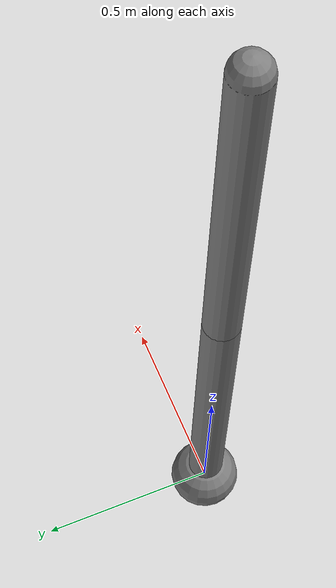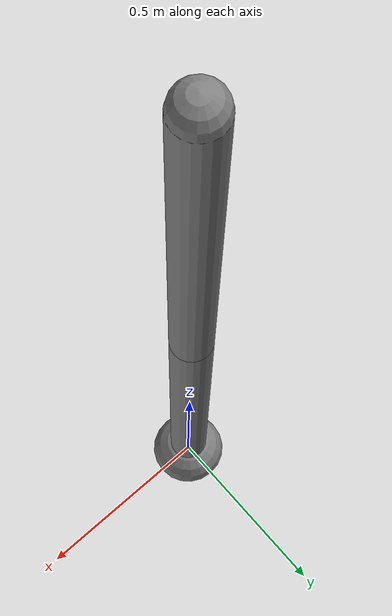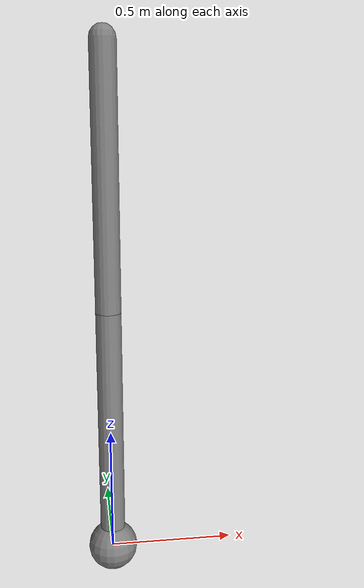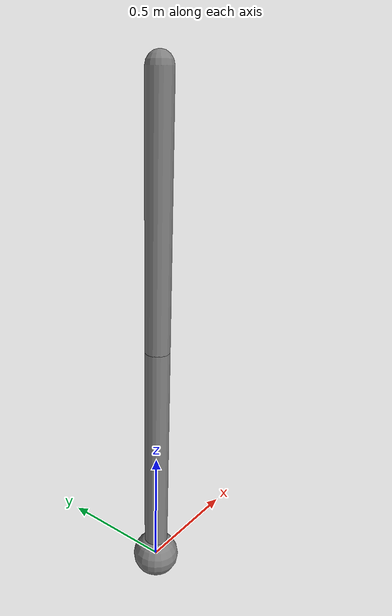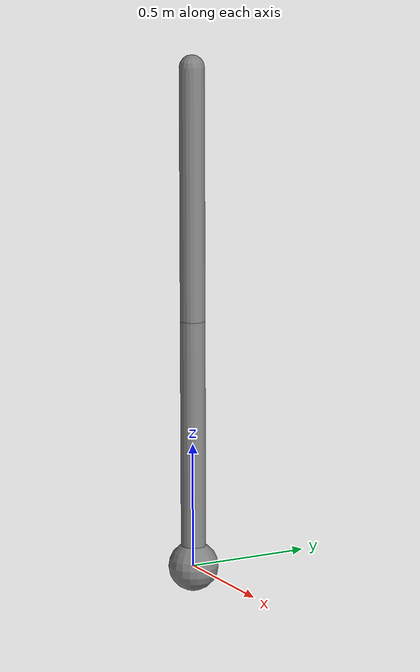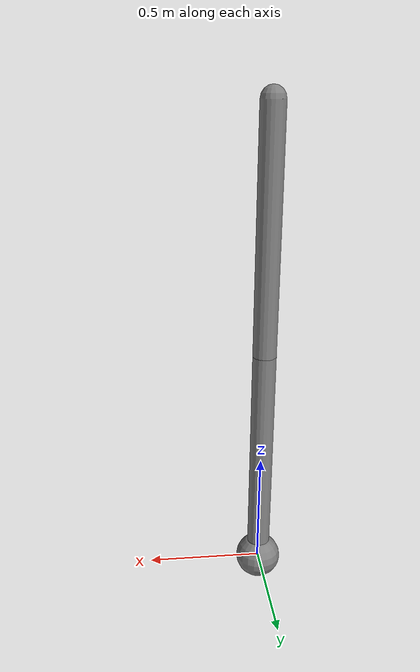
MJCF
<mujoco>

  <option iterations="50" />
  <custom>
      <!-- brax custom params -->
      <numeric data="0" name="matrix_inv_iterations"/>
      <numeric data="20" name="solver_maxls"/>
  </custom>

  <default>
      <geom contype="0" conaffinity="0" />
  </default>

  <worldbody>
    <geom name="base" pos="0 0 0" euler="0 0 0" size="0.1" type="sphere"/>

    <body name="link1" pos="0 0 0.5">
      <inertial pos="0 0 0" euler="0 0 0" mass="0.5" diaginertia="0.041979 0.041979 0.000625" />
      <joint axis="1 0 0" name="joint1" pos="0 0 -0.5" type="hinge"/>
      <geom name="clink1" size="0.05 0.5" type="capsule"/>
      <body name="link2" pos="0 0 1.0">
        <inertial pos="0 0 0" euler="0 0 0" mass="0.5" diaginertia="0.041979 0.041979 0.000625" />
        <joint axis="1 0 0" name="joint2" pos="0 0 -0.5" type="hinge"/>
        <geom name="clink2"  size="0.05 0.5" type="capsule"/>
      </body>
    </body>

  </worldbody>

  <actuator>
    <motor gear="1" joint="joint1" name="torque1"/>
    <motor gear="1" joint="joint2" name="torque2"/>
  </actuator>

</mujoco>
